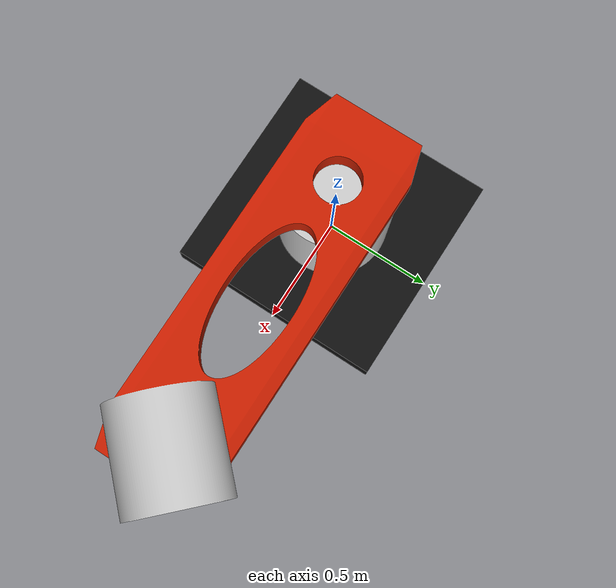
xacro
<?xml version="1.0"?>
<!-- Revolute-Revolute Manipulator -->
<robot name="planar_3dof" xmlns:xacro="http://www.ros.org/wiki/xacro">

  <!-- Constants for robot dimensions -->
  <xacro:property name="PI" value="3.1415926535897931"/>
  <xacro:property name="mass" value="1" />

  <xacro:property name="scale_dim" value="1.0" />
  <xacro:property name="base_z_displacement" value="0.051" />
  <xacro:property name="link_1_bb_x" value="1.0" />
  <xacro:property name="link_1_bb_y" value="1.0" />
  <xacro:property name="link_1_bb_z" value="0.58" />

  <xacro:property name="link_2_bb_x" value="1.82294" />
  <xacro:property name="link_2_bb_y" value="0.603217" />
  <xacro:property name="link_2_bb_z" value="0.508202" />

  <xacro:property name="joint1_displacement_z" value="0.585629" />

  <xacro:macro name="box_inertia" params="mass x y z">
    <inertia  ixx="${mass*(y*y+z*z)/12.0}" ixy = "0" ixz = "0"
              iyy="${mass*(x*x+z*z)/12.0}" iyz = "0"
              izz="${mass*(x*x+y*y)/12.0}"
    />
  </xacro:macro>

  <xacro:macro  name="cylinder_inertia" params="mass r l">
      <inertia  ixx="${mass*(3*r*r+l*l)/12}" ixy = "0" ixz = "0"
                iyy="${mass*(3*r*r+l*l)/12}" iyz = "0"
                izz="${mass*(r*r)/2}" />
  </xacro:macro >

  <xacro:include filename="$(find dh_description)/robot/dh_sim.gazebo" />

  <link name="world"/>

  <link name="link_1">
    <collision>
      <origin xyz="0 0 0" rpy="0 0 0"/>
          <geometry>
                <mesh filename="package://dh_description/meshes/dh_sim_link1.dae" scale="${scale_dim} ${scale_dim} ${scale_dim}"/>
          </geometry>
    </collision>

    <visual>
      <origin xyz="0 0 0" rpy="0 0 0"/>
          <geometry>
                <mesh filename="package://dh_description/meshes/dh_sim_link1.dae" scale="${scale_dim} ${scale_dim} ${scale_dim}"/>
          </geometry>
    </visual>

    <inertial>
      <origin xyz="0 0 0" rpy="0 0 0"/>
      <mass value="${mass}"/>
      <xacro:box_inertia mass="${mass}" x="${link_1_bb_x}" y="${link_1_bb_y}" z="${link_1_bb_z}"/>
    </inertial>
  </link>

  <joint name="fixed_world_to_base_joint" type="fixed">
    <origin xyz="0 0 ${base_z_displacement}" rpy="0 0 0"/>
    <parent link="world"/>
    <child link="link_1"/>
  </joint>

  <link name="link_2">
    <collision>
      <origin xyz="0 0 0" rpy="0 0 0"/>
          <geometry>
                <mesh filename="package://dh_description/meshes/dh_sim_link_2.dae" scale="${scale_dim} ${scale_dim} ${scale_dim}"/>
          </geometry>
    </collision>

    <visual>
      <origin xyz="0 0 0" rpy="0 0 0"/>
          <geometry>
                <mesh filename="package://dh_description/meshes/dh_sim_link_2.dae" scale="${scale_dim} ${scale_dim} ${scale_dim}"/>
          </geometry>
    </visual>

    <inertial>
      <origin xyz="0 0 0" rpy="0 0 0"/>
      <mass value="${mass}"/>
      <xacro:box_inertia mass="${mass}" x="${link_2_bb_x}" y="${link_2_bb_y}" z="${link_2_bb_z}"/>
    </inertial>
  </link>

  <joint name="joint1" type="continuous">
    <parent link="link_1"/>
    <child link="link_2"/>
    <origin xyz="0 0 ${joint1_displacement_z}" rpy="0 0 0"/>
    <axis xyz="0 0 1"/>
  </joint>

  <transmission name="tran1">
    <type>transmission_interface/SimpleTransmission</type>
    <joint name="joint1">
      <hardwareInterface>EffortJointInterface</hardwareInterface>
    </joint>
    <actuator name="motor1">
      <hardwareInterface>EffortJointInterface</hardwareInterface>
      <mechanicalReduction>1</mechanicalReduction>
    </actuator>
  </transmission>

</robot>
